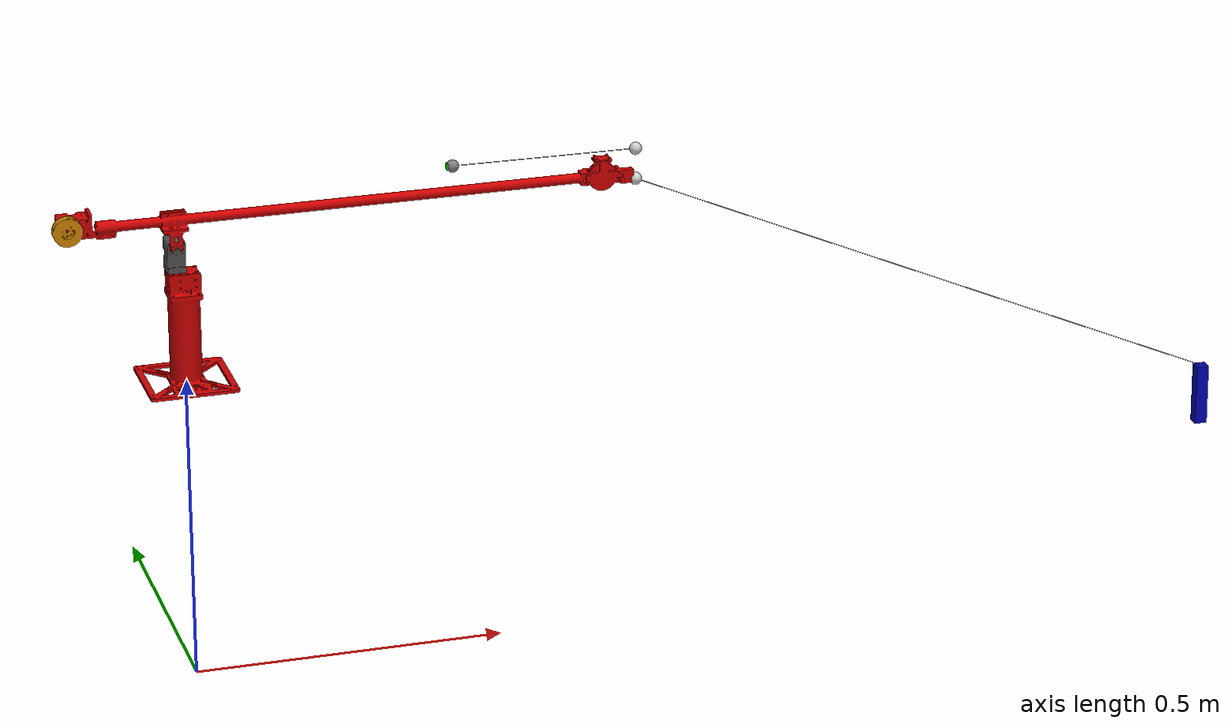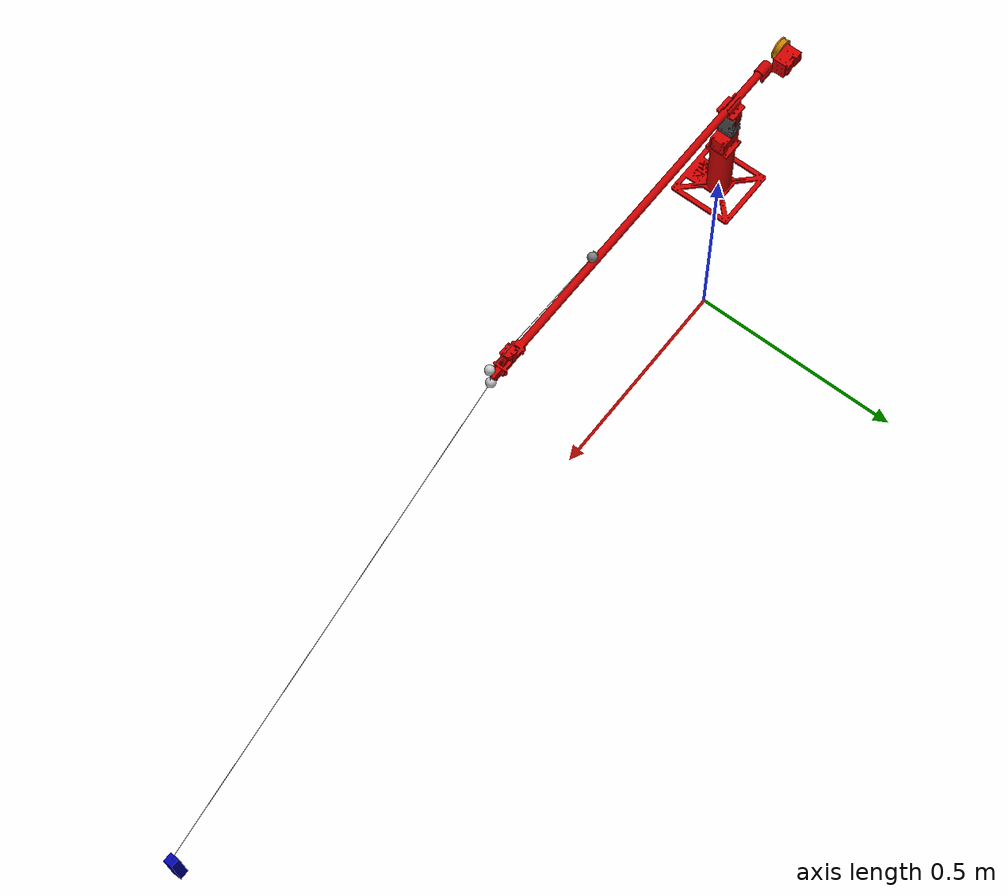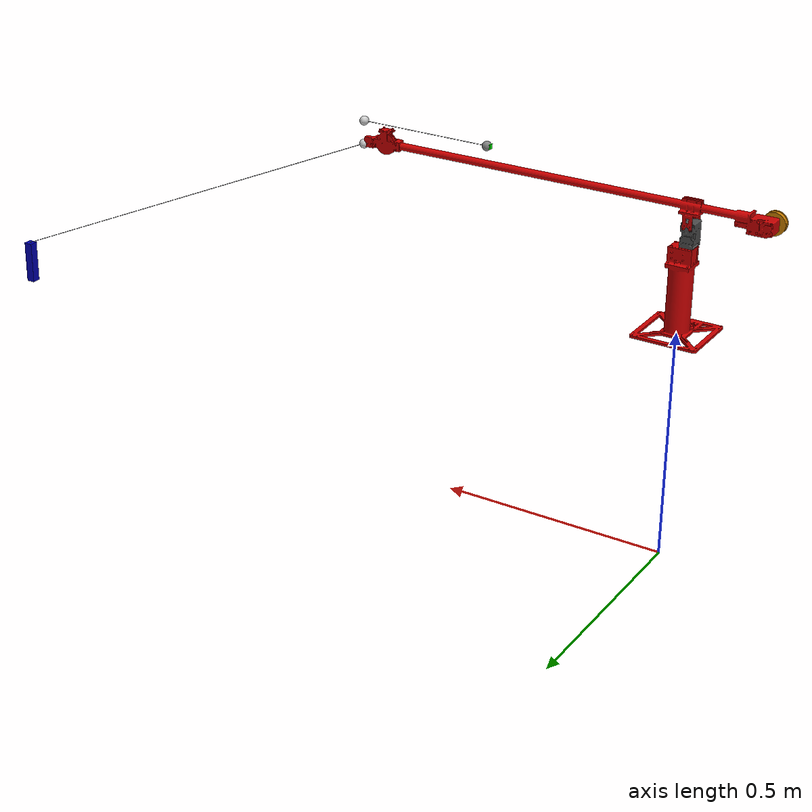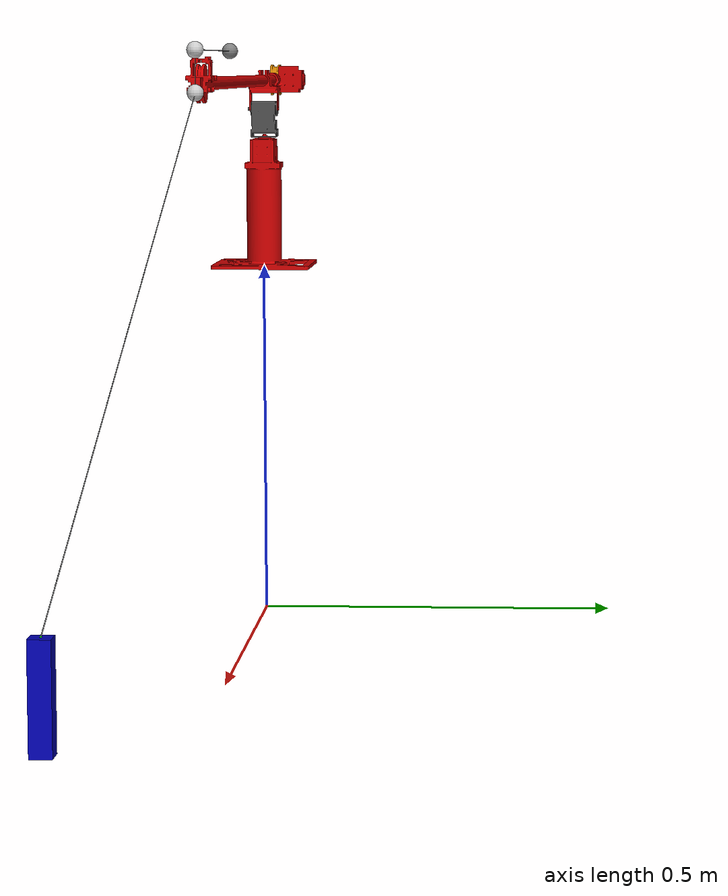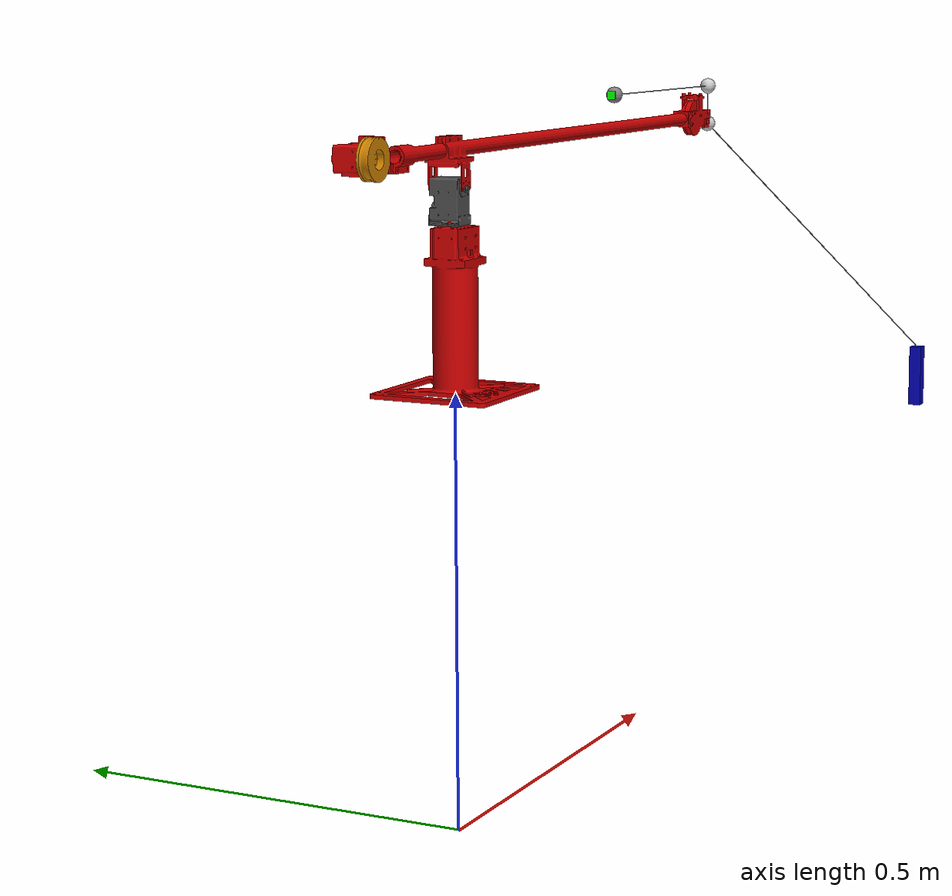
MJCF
<mujoco model="mini_crane_mujoco">
  <option integrator="implicitfast"/>
  <compiler angle="radian" meshdir="mesh/"/>

  <asset>
    <mesh name="base_link" file="base_link.stl" scale="0.001 0.001 0.001"/> <!-- conversion for autocad size -->
    <mesh name="boom_with_mount_2" file="boom_with_mount_2.stl" scale="0.001 0.001 0.001"/>
    <mesh name="winch_pulley_1" file="winch_pulley_1.stl" scale="0.001 0.001 0.001"/>
    <mesh name="luff_1" file="luff_1.stl" scale="0.001 0.001 0.001"/>
  </asset>

  <worldbody>
    <light name="light" pos="0 0 6"/>
    <camera name="fixed" pos="0 -4 1" zaxis="0 -1 0"/>
    <!-- geom name="floor" pos="0 0 0" size="4 4 -.2" type="plane" rgba=".5 .5 .5 1" material="blue_grid"/ -->
    <body name="base" pos="0 0 0.5">
      <geom type="mesh" contype="0" conaffinity="0" group="1" density="0" rgba="0.8 0 0 1" mesh="base_link"/>
      <!-- geom type="mesh" rgba="0.7 0.7 0.7 1" mesh="base_link"/ -->
      <body name="luff_1" pos="-0.012099 1e-06 0.186">
        <inertial pos="1.5589e-07 -0.000540527 0.0277155" mass="0.357116" diaginertia="0.000108 9.4e-05 5.9e-05"/>
        <joint name="Revolute 1" pos="0 0 0" axis="0 0 1"/>
        <geom pos="0.012099 -1e-06 -0.186" type="mesh" contype="0" conaffinity="0" group="1" density="0" rgba="0.3 0.3 0.3 1" mesh="luff_1"/>
        <!--geom pos="0.012099 -1e-06 -0.186" type="mesh" rgba="0.7 0.7 0.7 1" mesh="luff_1"/ -->
        <body name="boom_with_mount_2" pos="0 -0.019 0.0405">
          <inertial pos="0.173524 0.0273527 0.0402041" quat="-0.0852226 0.698002 -0.10012 0.703922" mass="1.17793" diaginertia="0.1445 0.144446 0.000254894"/>
          <joint name="Revolute 2" pos="0 0 0" axis="0 -1 0" range="-1.22173 1.5708" actuatorfrcrange="-100 100"/>
          <!-- joint name="Revolute 2" pos="0 0 0" axis="0 -1 0"/ -->
          <geom pos="0.012099 0.018999 -0.2265" quat="1 0 0 0" type="mesh" contype="0" conaffinity="0" group="1" density="0" rgba="0.8 0 0 1" mesh="boom_with_mount_2"/>
          <!-- geom pos="0.012099 0.018999 -0.2265" quat="1 0 0 0" type="mesh" rgba="0.7 0.7 0.7 1" mesh="boom_with_mount_2"/ -->
          <body name="winch_pulley_1" pos="-0.16475 0.023982 0.040989">
            <inertial pos="5.6472e-08 -0.00477244 -6.6746e-06" quat="0.707107 0 0 0.707107" mass="0.130263" diaginertia="3.6e-05 2e-05 2e-05"/>
            <joint name="Revolute 3" pos="0 0 0" axis="0 -1 0"/>
            <geom pos="0.176849 -0.004983 -0.267489" quat="1 0 0 0" type="mesh" contype="0" conaffinity="0" group="1" density="0" rgba="0.8 0.5 0 1" mesh="winch_pulley_1"/>
            <!-- geom pos="0.176849 -0.004983 -0.267489" quat="1 0 0 0" type="mesh" rgba="0.7 0.7 0.7 1" mesh="winch_pulley_1"/ -->
          </body> <!-- winch pulley -->

          <body name="boom_front_end" pos="0.74 0.023982 0.040989" >
              <site name="tip" pos="0 -0.004983 0.04" size="0.01" rgba="0.8 0.8 0.8 1"/>
              <site name="tip_lower" pos="0 -0.004983 -0.01" size="0.01" rgba="0.8 0.8 0.8 1"/>

              <body name="slider" pos="-0.3 0 0.04">
                <joint name="hoist-slider" type="slide" axis="1 0 0" />
                <geom type="box" size=".005 .005 .005" rgba="0 1 0 1" />
                <site name="hoist_end" pos=".005 0 0" size="0.01"/>
              </body>
          </body>

        </body> <!-- boom -->
      </body> <!-- luff -->
    </body> <!-- base -->

    <body name="payload" pos="1.7 0 .275">
      <joint type="free" name="payload-joint"/>
      <geom name="payload_geom" type="box" size=".01 .01 .05" rgba="0 0 0.7 1" condim="3" contype="1" conaffinity="1" mass="0.02"/>
      <site name="end" pos="0 0 .05" size="0.001" rgba="0 1 0 1"/>
      <site name="p_cg" pos="0 0 0"/>
    </body> <!-- payload -->

    <!-- Table -->

  </worldbody>

  <tendon>
    <spatial name="rope" limited="true" range="0.1 0.8 " width="0.0005">
      <site site="hoist_end"/>
      <site site="tip"/>
      <site site="tip_lower"/>
      <site site="end"/>
    </spatial>
  </tendon>

    <actuator>
    <intvelocity name="slew-velocity" joint="Revolute 1" actrange="-10000 10000" ctrllimited="true" ctrlrange="-1.57 1.57" kp="500" kv="15"/>
    <intvelocity name="luff-velocity" joint="Revolute 2" actrange="-1.57 1.57" ctrllimited="true" ctrlrange="-.87 .87" kp="500" kv="15"/>
    <position name="hoist-position" joint="hoist-slider"  ctrllimited="true" ctrlrange="-2 2"  kp="100" kv="15"/>
  </actuator>

</mujoco>
